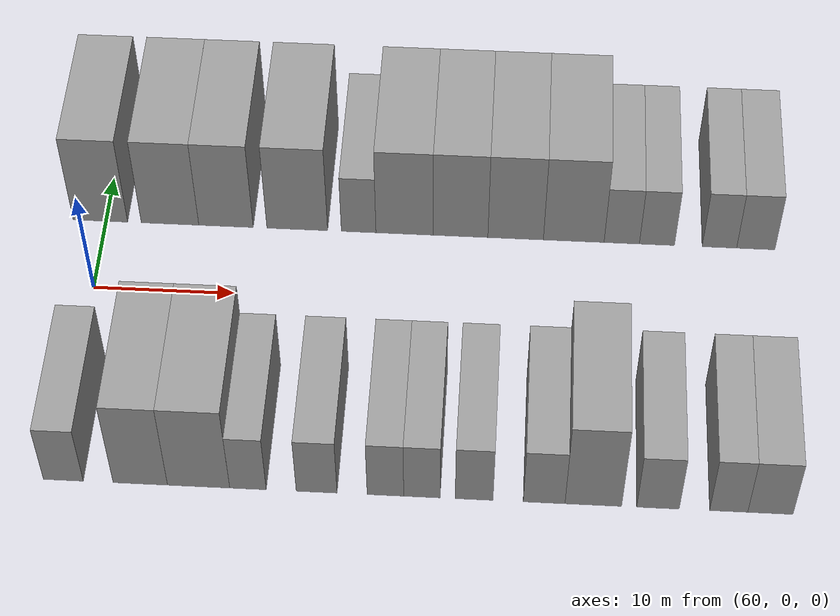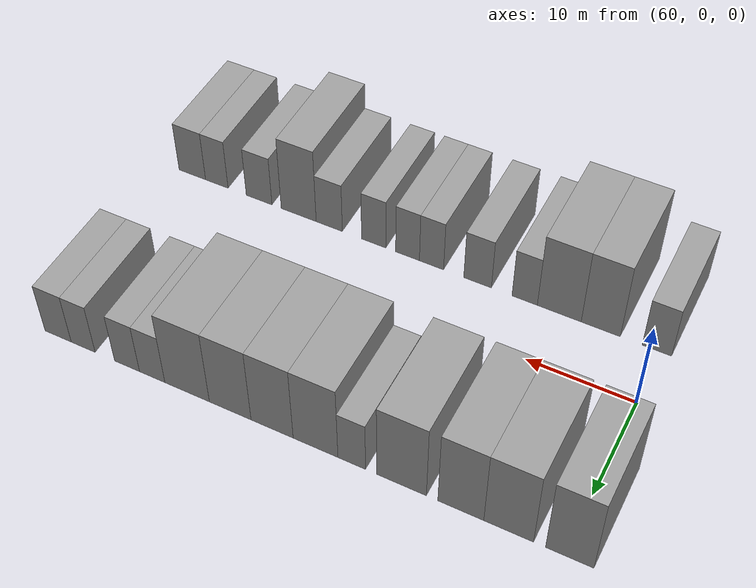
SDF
<sdf version="1.6">
 <world name="default">
  <model name="building_14">
   <static>1</static>
   <pose>59.5513 11.0000 0 0.000000 0.000000 1.570796</pose>
   <link name="link">
    <pose>0 0 4.50 0 0 0</pose>
    <collision name="collision"><geometry><box><size>10.0000 3.9937 9.0000</size></box></geometry></collision>
    <visual name="visual">
     <cast_shadows>0</cast_shadows>
     <geometry><box><size>10.0000 3.9937 9.0000</size></box></geometry>
     <material>
      <script>
       <uri>model://grey_wall/materials/scripts</uri>
       <uri>model://grey_wall/materials/textures</uri>
       <name>vrc/grey_wall</name>
      </script>
     </material>
    </visual>
   </link>
  </model>
  <model name="building_15">
   <static>1</static>
   <pose>64.6542 11.0000 0 0.000000 0.000000 1.570796</pose>
   <link name="link">
    <pose>0 0 4.50 0 0 0</pose>
    <collision name="collision"><geometry><box><size>10.0000 4.2122 9.0000</size></box></geometry></collision>
    <visual name="visual">
     <cast_shadows>0</cast_shadows>
     <geometry><box><size>10.0000 4.2122 9.0000</size></box></geometry>
     <material>
      <script>
       <uri>model://grey_wall/materials/scripts</uri>
       <uri>model://grey_wall/materials/textures</uri>
       <name>vrc/grey_wall</name>
      </script>
     </material>
    </visual>
   </link>
  </model>
  <model name="building_16">
   <static>1</static>
   <pose>68.7493 11.0000 0 0.000000 0.000000 1.570796</pose>
   <link name="link">
    <pose>0 0 4.50 0 0 0</pose>
    <collision name="collision"><geometry><box><size>10.0000 3.9779 9.0000</size></box></geometry></collision>
    <visual name="visual">
     <cast_shadows>0</cast_shadows>
     <geometry><box><size>10.0000 3.9779 9.0000</size></box></geometry>
     <material>
      <script>
       <uri>model://grey_wall/materials/scripts</uri>
       <uri>model://grey_wall/materials/textures</uri>
       <name>vrc/grey_wall</name>
      </script>
     </material>
    </visual>
   </link>
  </model>
  <model name="building_17">
   <static>1</static>
   <pose>73.9517 11.0000 0 0.000000 0.000000 1.570796</pose>
   <link name="link">
    <pose>0 0 4.50 0 0 0</pose>
    <collision name="collision"><geometry><box><size>10.0000 4.4268 9.0000</size></box></geometry></collision>
    <visual name="visual">
     <cast_shadows>0</cast_shadows>
     <geometry><box><size>10.0000 4.4268 9.0000</size></box></geometry>
     <material>
      <script>
       <uri>model://grey_wall/materials/scripts</uri>
       <uri>model://grey_wall/materials/textures</uri>
       <name>vrc/grey_wall</name>
      </script>
     </material>
    </visual>
   </link>
  </model>
  <model name="building_18">
   <static>1</static>
   <pose>78.4234 11.0000 0 0.000000 0.000000 1.570796</pose>
   <link name="link">
    <pose>0 0 3.00 0 0 0</pose>
    <collision name="collision"><geometry><box><size>10.0000 2.5167 6.0000</size></box></geometry></collision>
    <visual name="visual">
     <cast_shadows>0</cast_shadows>
     <geometry><box><size>10.0000 2.5167 6.0000</size></box></geometry>
     <material>
      <script>
       <uri>model://grey_wall/materials/scripts</uri>
       <uri>model://grey_wall/materials/textures</uri>
       <name>vrc/grey_wall</name>
      </script>
     </material>
    </visual>
   </link>
  </model>
  <model name="building_19">
   <static>1</static>
   <pose>81.7531 11.0000 0 0.000000 0.000000 1.570796</pose>
   <link name="link">
    <pose>0 0 4.50 0 0 0</pose>
    <collision name="collision"><geometry><box><size>10.0000 4.1428 9.0000</size></box></geometry></collision>
    <visual name="visual">
     <cast_shadows>0</cast_shadows>
     <geometry><box><size>10.0000 4.1428 9.0000</size></box></geometry>
     <material>
      <script>
       <uri>model://grey_wall/materials/scripts</uri>
       <uri>model://grey_wall/materials/textures</uri>
       <name>vrc/grey_wall</name>
      </script>
     </material>
    </visual>
   </link>
  </model>
  <model name="building_20">
   <static>1</static>
   <pose>85.8169 11.0000 0 0.000000 0.000000 1.570796</pose>
   <link name="link">
    <pose>0 0 4.50 0 0 0</pose>
    <collision name="collision"><geometry><box><size>10.0000 3.9847 9.0000</size></box></geometry></collision>
    <visual name="visual">
     <cast_shadows>0</cast_shadows>
     <geometry><box><size>10.0000 3.9847 9.0000</size></box></geometry>
     <material>
      <script>
       <uri>model://grey_wall/materials/scripts</uri>
       <uri>model://grey_wall/materials/textures</uri>
       <name>vrc/grey_wall</name>
      </script>
     </material>
    </visual>
   </link>
  </model>
  <model name="building_21">
   <static>1</static>
   <pose>89.8187 11.0000 0 0.000000 0.000000 1.570796</pose>
   <link name="link">
    <pose>0 0 4.50 0 0 0</pose>
    <collision name="collision"><geometry><box><size>10.0000 4.0189 9.0000</size></box></geometry></collision>
    <visual name="visual">
     <cast_shadows>0</cast_shadows>
     <geometry><box><size>10.0000 4.0189 9.0000</size></box></geometry>
     <material>
      <script>
       <uri>model://grey_wall/materials/scripts</uri>
       <uri>model://grey_wall/materials/textures</uri>
       <name>vrc/grey_wall</name>
      </script>
     </material>
    </visual>
   </link>
  </model>
  <model name="building_22">
   <static>1</static>
   <pose>94.0223 11.0000 0 0.000000 0.000000 1.570796</pose>
   <link name="link">
    <pose>0 0 4.50 0 0 0</pose>
    <collision name="collision"><geometry><box><size>10.0000 4.3884 9.0000</size></box></geometry></collision>
    <visual name="visual">
     <cast_shadows>0</cast_shadows>
     <geometry><box><size>10.0000 4.3884 9.0000</size></box></geometry>
     <material>
      <script>
       <uri>model://grey_wall/materials/scripts</uri>
       <uri>model://grey_wall/materials/textures</uri>
       <name>vrc/grey_wall</name>
      </script>
     </material>
    </visual>
   </link>
  </model>
  <model name="building_23">
   <static>1</static>
   <pose>97.4901 11.0000 0 0.000000 0.000000 1.570796</pose>
   <link name="link">
    <pose>0 0 3.00 0 0 0</pose>
    <collision name="collision"><geometry><box><size>10.0000 2.5473 6.0000</size></box></geometry></collision>
    <visual name="visual">
     <cast_shadows>0</cast_shadows>
     <geometry><box><size>10.0000 2.5473 6.0000</size></box></geometry>
     <material>
      <script>
       <uri>model://grey_wall/materials/scripts</uri>
       <uri>model://grey_wall/materials/textures</uri>
       <name>vrc/grey_wall</name>
      </script>
     </material>
    </visual>
   </link>
  </model>
  <model name="building_24">
   <static>1</static>
   <pose>100.0293 11.0000 0 0.000000 0.000000 1.570796</pose>
   <link name="link">
    <pose>0 0 3.00 0 0 0</pose>
    <collision name="collision"><geometry><box><size>10.0000 2.5309 6.0000</size></box></geometry></collision>
    <visual name="visual">
     <cast_shadows>0</cast_shadows>
     <geometry><box><size>10.0000 2.5309 6.0000</size></box></geometry>
     <material>
      <script>
       <uri>model://grey_wall/materials/scripts</uri>
       <uri>model://grey_wall/materials/textures</uri>
       <name>vrc/grey_wall</name>
      </script>
     </material>
    </visual>
   </link>
  </model>
  <model name="building_25">
   <static>1</static>
   <pose>104.5352 11.0000 0 0.000000 0.000000 1.570796</pose>
   <link name="link">
    <pose>0 0 3.00 0 0 0</pose>
    <collision name="collision"><geometry><box><size>10.0000 2.4810 6.0000</size></box></geometry></collision>
    <visual name="visual">
     <cast_shadows>0</cast_shadows>
     <geometry><box><size>10.0000 2.4810 6.0000</size></box></geometry>
     <material>
      <script>
       <uri>model://grey_wall/materials/scripts</uri>
       <uri>model://grey_wall/materials/textures</uri>
       <name>vrc/grey_wall</name>
      </script>
     </material>
    </visual>
   </link>
  </model>
  <model name="building_26">
   <static>1</static>
   <pose>107.1506 11.0000 0 0.000000 0.000000 1.570796</pose>
   <link name="link">
    <pose>0 0 3.00 0 0 0</pose>
    <collision name="collision"><geometry><box><size>10.0000 2.7499 6.0000</size></box></geometry></collision>
    <visual name="visual">
     <cast_shadows>0</cast_shadows>
     <geometry><box><size>10.0000 2.7499 6.0000</size></box></geometry>
     <material>
      <script>
       <uri>model://grey_wall/materials/scripts</uri>
       <uri>model://grey_wall/materials/textures</uri>
       <name>vrc/grey_wall</name>
      </script>
     </material>
    </visual>
   </link>
  </model>
  <model name="building_65">
   <static>1</static>
   <pose>60.3456 -11.0000 0 0.000000 0.000000 1.570796</pose>
   <link name="link">
    <pose>0 0 3.00 0 0 0</pose>
    <collision name="collision"><geometry><box><size>10.0000 2.6671 6.0000</size></box></geometry></collision>
    <visual name="visual">
     <cast_shadows>0</cast_shadows>
     <geometry><box><size>10.0000 2.6671 6.0000</size></box></geometry>
     <material>
      <script>
       <uri>model://grey_wall/materials/scripts</uri>
       <uri>model://grey_wall/materials/textures</uri>
       <name>vrc/grey_wall</name>
      </script>
     </material>
    </visual>
   </link>
  </model>
  <model name="building_66">
   <static>1</static>
   <pose>65.4968 -11.0000 0 0.000000 0.000000 1.570796</pose>
   <link name="link">
    <pose>0 0 4.50 0 0 0</pose>
    <collision name="collision"><geometry><box><size>10.0000 3.6353 9.0000</size></box></geometry></collision>
    <visual name="visual">
     <cast_shadows>0</cast_shadows>
     <geometry><box><size>10.0000 3.6353 9.0000</size></box></geometry>
     <material>
      <script>
       <uri>model://grey_wall/materials/scripts</uri>
       <uri>model://grey_wall/materials/textures</uri>
       <name>vrc/grey_wall</name>
      </script>
     </material>
    </visual>
   </link>
  </model>
  <model name="building_67">
   <static>1</static>
   <pose>69.3894 -11.0000 0 0.000000 0.000000 1.570796</pose>
   <link name="link">
    <pose>0 0 4.50 0 0 0</pose>
    <collision name="collision"><geometry><box><size>10.0000 4.1499 9.0000</size></box></geometry></collision>
    <visual name="visual">
     <cast_shadows>0</cast_shadows>
     <geometry><box><size>10.0000 4.1499 9.0000</size></box></geometry>
     <material>
      <script>
       <uri>model://grey_wall/materials/scripts</uri>
       <uri>model://grey_wall/materials/textures</uri>
       <name>vrc/grey_wall</name>
      </script>
     </material>
    </visual>
   </link>
  </model>
  <model name="building_68">
   <static>1</static>
   <pose>72.6811 -11.0000 0 0.000000 0.000000 1.570796</pose>
   <link name="link">
    <pose>0 0 3.00 0 0 0</pose>
    <collision name="collision"><geometry><box><size>10.0000 2.4334 6.0000</size></box></geometry></collision>
    <visual name="visual">
     <cast_shadows>0</cast_shadows>
     <geometry><box><size>10.0000 2.4334 6.0000</size></box></geometry>
     <material>
      <script>
       <uri>model://grey_wall/materials/scripts</uri>
       <uri>model://grey_wall/materials/textures</uri>
       <name>vrc/grey_wall</name>
      </script>
     </material>
    </visual>
   </link>
  </model>
  <model name="building_69">
   <static>1</static>
   <pose>77.2539 -11.0000 0 0.000000 0.000000 1.570796</pose>
   <link name="link">
    <pose>0 0 3.00 0 0 0</pose>
    <collision name="collision"><geometry><box><size>10.0000 2.7123 6.0000</size></box></geometry></collision>
    <visual name="visual">
     <cast_shadows>0</cast_shadows>
     <geometry><box><size>10.0000 2.7123 6.0000</size></box></geometry>
     <material>
      <script>
       <uri>model://grey_wall/materials/scripts</uri>
       <uri>model://grey_wall/materials/textures</uri>
       <name>vrc/grey_wall</name>
      </script>
     </material>
    </visual>
   </link>
  </model>
  <model name="building_70">
   <static>1</static>
   <pose>81.8220 -11.0000 0 0.000000 0.000000 1.570796</pose>
   <link name="link">
    <pose>0 0 3.00 0 0 0</pose>
    <collision name="collision"><geometry><box><size>10.0000 2.4238 6.0000</size></box></geometry></collision>
    <visual name="visual">
     <cast_shadows>0</cast_shadows>
     <geometry><box><size>10.0000 2.4238 6.0000</size></box></geometry>
     <material>
      <script>
       <uri>model://grey_wall/materials/scripts</uri>
       <uri>model://grey_wall/materials/textures</uri>
       <name>vrc/grey_wall</name>
      </script>
     </material>
    </visual>
   </link>
  </model>
  <model name="building_71">
   <static>1</static>
   <pose>84.2395 -11.0000 0 0.000000 0.000000 1.570796</pose>
   <link name="link">
    <pose>0 0 3.00 0 0 0</pose>
    <collision name="collision"><geometry><box><size>10.0000 2.4113 6.0000</size></box></geometry></collision>
    <visual name="visual">
     <cast_shadows>0</cast_shadows>
     <geometry><box><size>10.0000 2.4113 6.0000</size></box></geometry>
     <material>
      <script>
       <uri>model://grey_wall/materials/scripts</uri>
       <uri>model://grey_wall/materials/textures</uri>
       <name>vrc/grey_wall</name>
      </script>
     </material>
    </visual>
   </link>
  </model>
  <model name="building_72">
   <static>1</static>
   <pose>87.6946 -11.0000 0 0.000000 0.000000 1.570796</pose>
   <link name="link">
    <pose>0 0 3.00 0 0 0</pose>
    <collision name="collision"><geometry><box><size>10.0000 2.4989 6.0000</size></box></geometry></collision>
    <visual name="visual">
     <cast_shadows>0</cast_shadows>
     <geometry><box><size>10.0000 2.4989 6.0000</size></box></geometry>
     <material>
      <script>
       <uri>model://grey_wall/materials/scripts</uri>
       <uri>model://grey_wall/materials/textures</uri>
       <name>vrc/grey_wall</name>
      </script>
     </material>
    </visual>
   </link>
  </model>
  <model name="building_73">
   <static>1</static>
   <pose>92.3211 -11.0000 0 0.000000 0.000000 1.570796</pose>
   <link name="link">
    <pose>0 0 3.00 0 0 0</pose>
    <collision name="collision"><geometry><box><size>10.0000 2.7540 6.0000</size></box></geometry></collision>
    <visual name="visual">
     <cast_shadows>0</cast_shadows>
     <geometry><box><size>10.0000 2.7540 6.0000</size></box></geometry>
     <material>
      <script>
       <uri>model://grey_wall/materials/scripts</uri>
       <uri>model://grey_wall/materials/textures</uri>
       <name>vrc/grey_wall</name>
      </script>
     </material>
    </visual>
   </link>
  </model>
  <model name="building_74">
   <static>1</static>
   <pose>95.5631 -11.0000 0 0.000000 0.000000 1.570796</pose>
   <link name="link">
    <pose>0 0 4.50 0 0 0</pose>
    <collision name="collision"><geometry><box><size>10.0000 3.7300 9.0000</size></box></geometry></collision>
    <visual name="visual">
     <cast_shadows>0</cast_shadows>
     <geometry><box><size>10.0000 3.7300 9.0000</size></box></geometry>
     <material>
      <script>
       <uri>model://grey_wall/materials/scripts</uri>
       <uri>model://grey_wall/materials/textures</uri>
       <name>vrc/grey_wall</name>
      </script>
     </material>
    </visual>
   </link>
  </model>
  <model name="building_75">
   <static>1</static>
   <pose>99.8254 -11.0000 0 0.000000 0.000000 1.570796</pose>
   <link name="link">
    <pose>0 0 3.00 0 0 0</pose>
    <collision name="collision"><geometry><box><size>10.0000 2.7945 6.0000</size></box></geometry></collision>
    <visual name="visual">
     <cast_shadows>0</cast_shadows>
     <geometry><box><size>10.0000 2.7945 6.0000</size></box></geometry>
     <material>
      <script>
       <uri>model://grey_wall/materials/scripts</uri>
       <uri>model://grey_wall/materials/textures</uri>
       <name>vrc/grey_wall</name>
      </script>
     </material>
    </visual>
   </link>
  </model>
  <model name="building_76">
   <static>1</static>
   <pose>104.4739 -11.0000 0 0.000000 0.000000 1.570796</pose>
   <link name="link">
    <pose>0 0 3.00 0 0 0</pose>
    <collision name="collision"><geometry><box><size>10.0000 2.5026 6.0000</size></box></geometry></collision>
    <visual name="visual">
     <cast_shadows>0</cast_shadows>
     <geometry><box><size>10.0000 2.5026 6.0000</size></box></geometry>
     <material>
      <script>
       <uri>model://grey_wall/materials/scripts</uri>
       <uri>model://grey_wall/materials/textures</uri>
       <name>vrc/grey_wall</name>
      </script>
     </material>
    </visual>
   </link>
  </model>
  <model name="building_77">
   <static>1</static>
   <pose>107.2092 -11.0000 0 0.000000 0.000000 1.570796</pose>
   <link name="link">
    <pose>0 0 3.00 0 0 0</pose>
    <collision name="collision"><geometry><box><size>10.0000 2.9679 6.0000</size></box></geometry></collision>
    <visual name="visual">
     <cast_shadows>0</cast_shadows>
     <geometry><box><size>10.0000 2.9679 6.0000</size></box></geometry>
     <material>
      <script>
       <uri>model://grey_wall/materials/scripts</uri>
       <uri>model://grey_wall/materials/textures</uri>
       <name>vrc/grey_wall</name>
      </script>
     </material>
    </visual>
   </link>
  </model>
 </world>
</sdf>
